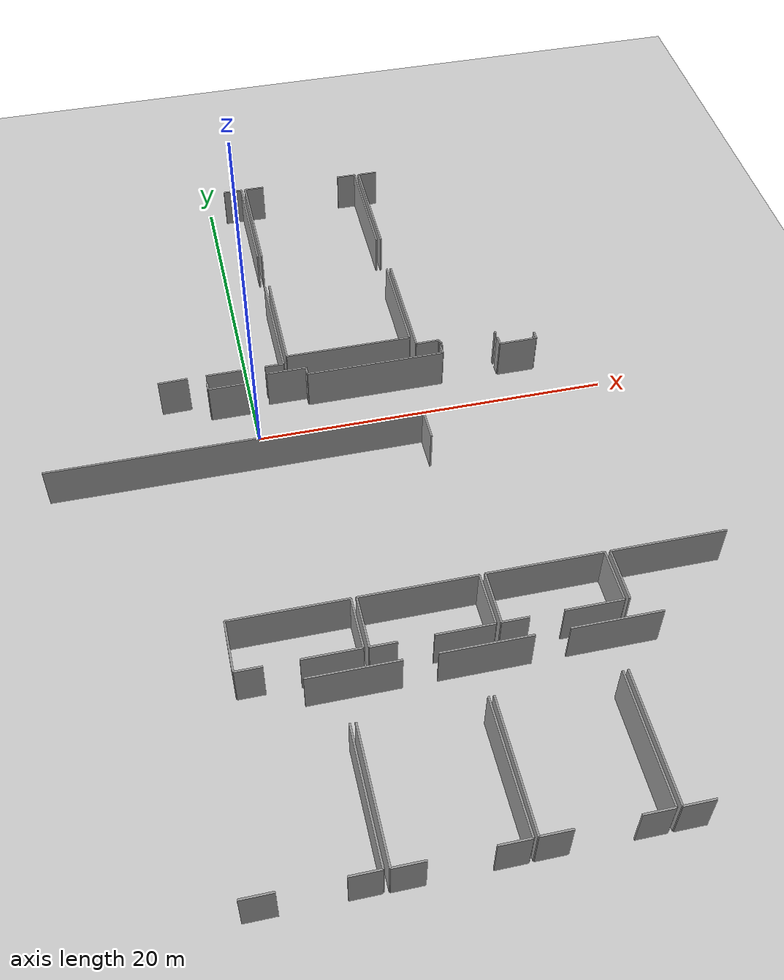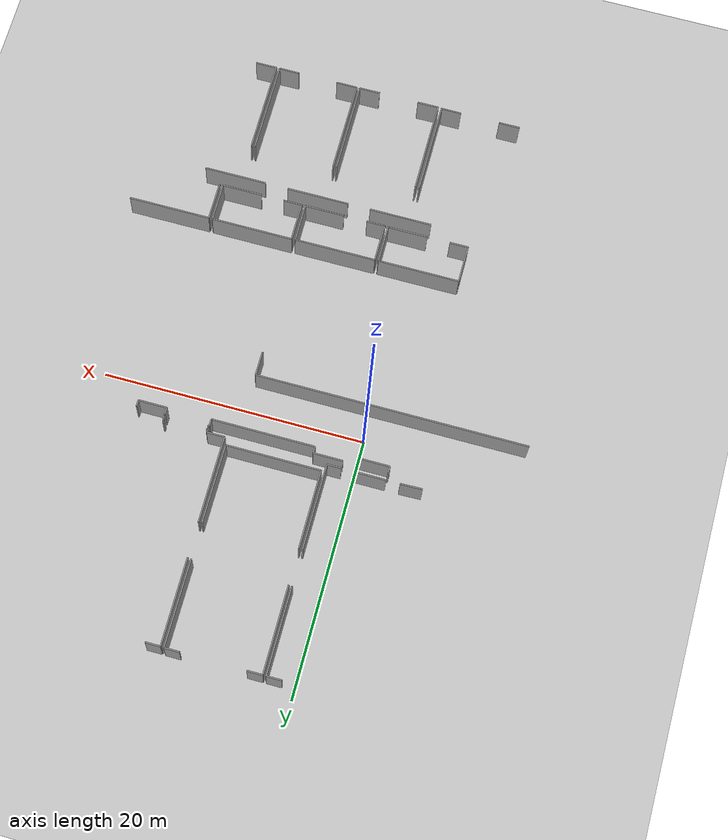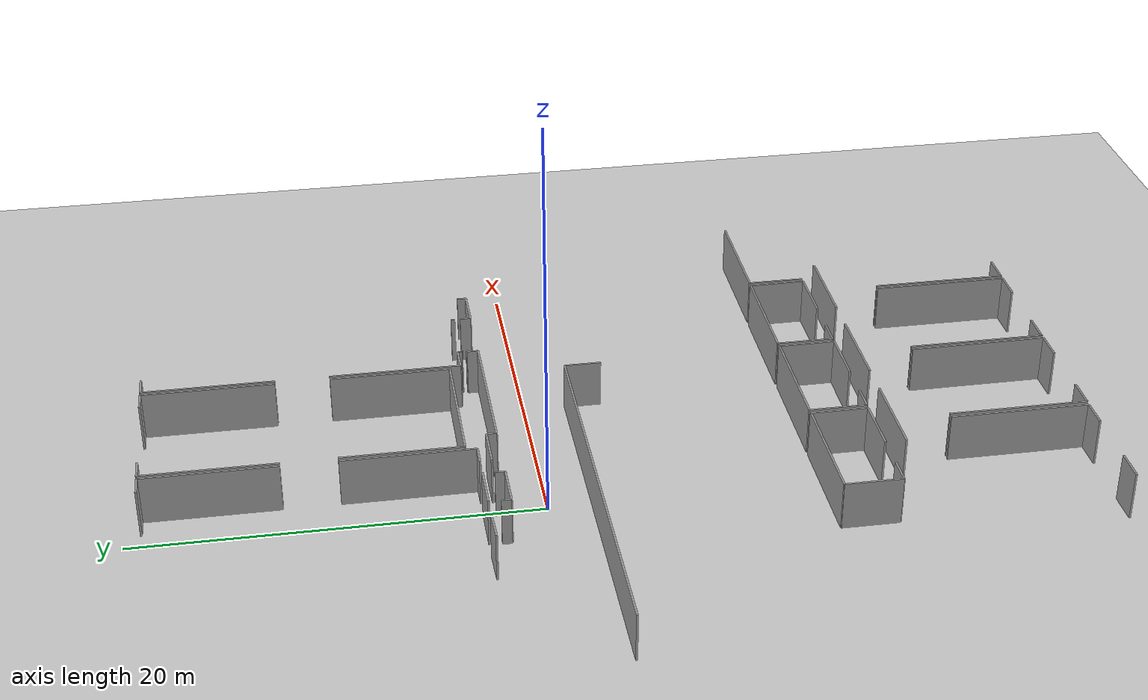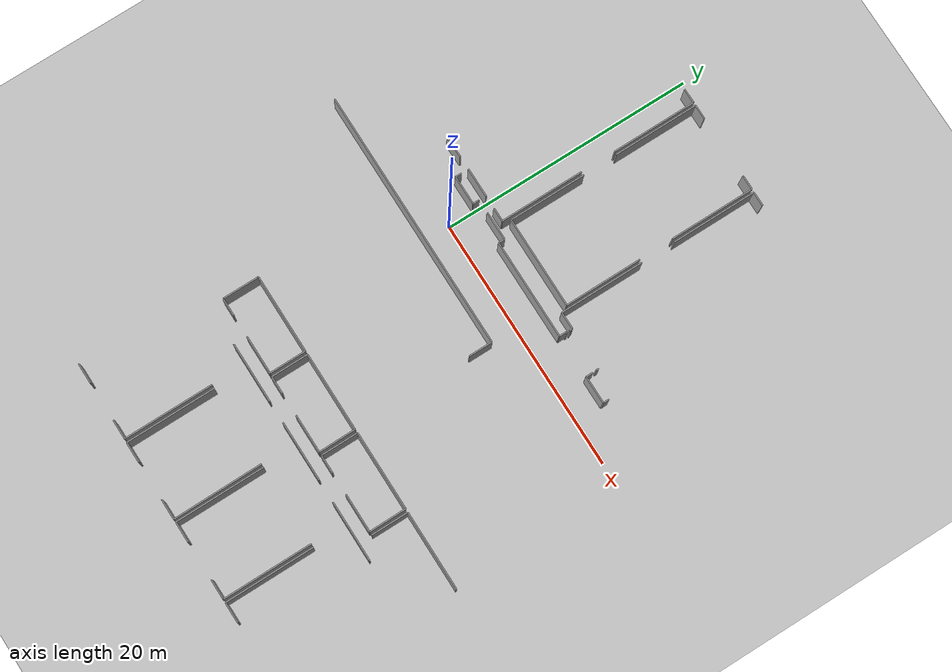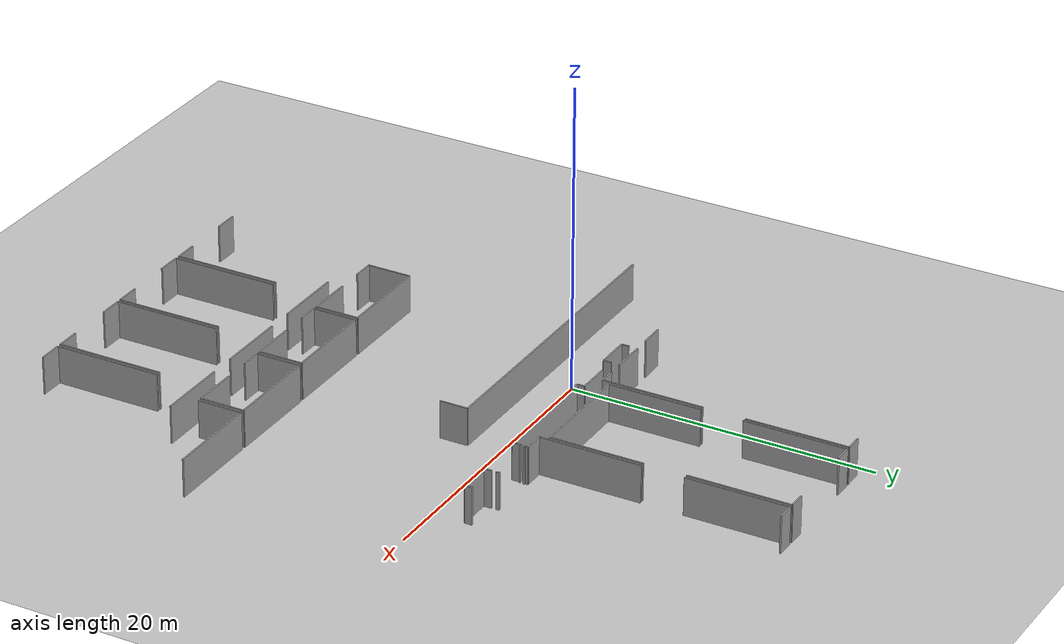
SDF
<sdf version="1.6">
 <world name="default">
  <model name="ground_plane">
   <static>1</static>
   <link name="link">
    <collision name="collision">
     <geometry><plane><normal>0 0 1</normal><size>100 100</size></plane></geometry>
     <surface><friction><ode><mu>100</mu><mu2>50</mu2></ode></friction></surface>
    </collision>
    <visual name="visual">
     <cast_shadows>0</cast_shadows>
     <geometry><plane><normal>0 0 1</normal><size>100 100</size></plane></geometry>
     <material>
      <script><uri>file://media/materials/scripts/gazebo.material</uri><name>Gazebo/Grey</name></script>
     </material>
    </visual>
   </link>
  </model>
  <model name="50045232">
   <static>1</static>
   <link name="Wall_24">
    <collision name="Wall_24_Collision">
     <geometry><box><size>1.14405461184 0.1 2.5</size></box></geometry>
     <pose>0.572027305922 0 1.25 0 0 0</pose>
    </collision>
    <visual name="Wall_24_Visual">
     <pose>0.572027305922 0 1.25 0 0 0</pose>
     <geometry><box><size>1.14405461184 0.1 2.5</size></box></geometry>
     <material>
      <script><uri>file://media/materials/scripts/gazebo.material</uri><name>Gazebo/Grey</name></script>
      <ambient>1 1 1 1</ambient>
     </material>
    </visual>
    <pose>47.6481981267 -0.0293379901572 0 0 0 0.0</pose>
   </link>
   <link name="Wall_25">
    <collision name="Wall_25_Collision">
     <geometry><box><size>6.67039216926 0.1 2.5</size></box></geometry>
     <pose>3.33519608463 0 1.25 0 0 0</pose>
    </collision>
    <visual name="Wall_25_Visual">
     <pose>3.33519608463 0 1.25 0 0 0</pose>
     <geometry><box><size>6.67039216926 0.1 2.5</size></box></geometry>
     <material>
      <script><uri>file://media/materials/scripts/gazebo.material</uri><name>Gazebo/Grey</name></script>
      <ambient>1 1 1 1</ambient>
     </material>
    </visual>
    <pose>48.7922527385 -0.0293379901572 0 0 0 -1.57068208678</pose>
   </link>
   <link name="Wall_26">
    <collision name="Wall_26_Collision">
     <geometry><box><size>6.6819495158 0.1 2.5</size></box></geometry>
     <pose>3.3409747579 0 1.25 0 0 0</pose>
    </collision>
    <visual name="Wall_26_Visual">
     <pose>3.3409747579 0 1.25 0 0 0</pose>
     <geometry><box><size>6.6819495158 0.1 2.5</size></box></geometry>
     <material>
      <script><uri>file://media/materials/scripts/gazebo.material</uri><name>Gazebo/Grey</name></script>
      <ambient>1 1 1 1</ambient>
     </material>
    </visual>
    <pose>49.0359739641 -6.71077948881 0 0 0 1.57079632679</pose>
   </link>
   <link name="Wall_27">
    <collision name="Wall_27_Collision">
     <geometry><box><size>1.15586601048 0.1 2.5</size></box></geometry>
     <pose>0.577933005239 0 1.25 0 0 0</pose>
    </collision>
    <visual name="Wall_27_Visual">
     <pose>0.577933005239 0 1.25 0 0 0</pose>
     <geometry><box><size>1.15586601048 0.1 2.5</size></box></geometry>
     <material>
      <script><uri>file://media/materials/scripts/gazebo.material</uri><name>Gazebo/Grey</name></script>
      <ambient>1 1 1 1</ambient>
     </material>
    </visual>
    <pose>49.0359739641 -0.0288299730116 0 0 0 0.0</pose>
   </link>
   <link name="Wall_28">
    <collision name="Wall_28_Collision">
     <geometry><box><size>1.15243689475 0.1 2.5</size></box></geometry>
     <pose>0.576218447373 0 1.25 0 0 0</pose>
    </collision>
    <visual name="Wall_28_Visual">
     <pose>0.576218447373 0 1.25 0 0 0</pose>
     <geometry><box><size>1.15243689475 0.1 2.5</size></box></geometry>
     <material>
      <script><uri>file://media/materials/scripts/gazebo.material</uri><name>Gazebo/Grey</name></script>
      <ambient>1 1 1 1</ambient>
     </material>
    </visual>
    <pose>55.0895062708 -0.0288299730116 0 0 0 0.0</pose>
   </link>
   <link name="Wall_29">
    <collision name="Wall_29_Collision">
     <geometry><box><size>6.68195164493 0.1 2.5</size></box></geometry>
     <pose>3.34097582246 0 1.25 0 0 0</pose>
    </collision>
    <visual name="Wall_29_Visual">
     <pose>3.34097582246 0 1.25 0 0 0</pose>
     <geometry><box><size>6.68195164493 0.1 2.5</size></box></geometry>
     <material>
      <script><uri>file://media/materials/scripts/gazebo.material</uri><name>Gazebo/Grey</name></script>
      <ambient>1 1 1 1</ambient>
     </material>
    </visual>
    <pose>56.2419431656 -0.0288299730116 0 0 0 -1.57159462359</pose>
   </link>
   <link name="Wall_58">
    <collision name="Wall_58_Collision">
     <geometry><box><size>1.13287823464 0.1 2.5</size></box></geometry>
     <pose>0.56643911732 0 1.25 0 0 0</pose>
    </collision>
    <visual name="Wall_58_Visual">
     <pose>0.56643911732 0 1.25 0 0 0</pose>
     <geometry><box><size>1.13287823464 0.1 2.5</size></box></geometry>
     <material>
      <script><uri>file://media/materials/scripts/gazebo.material</uri><name>Gazebo/Grey</name></script>
      <ambient>1 1 1 1</ambient>
     </material>
    </visual>
    <pose>57.630608033 -0.0504207016987 0 0 0 3.14159265359</pose>
   </link>
   <link name="Wall_59">
    <collision name="Wall_59_Collision">
     <geometry><box><size>6.67814183275 0.1 2.5</size></box></geometry>
     <pose>3.33907091638 0 1.25 0 0 0</pose>
    </collision>
    <visual name="Wall_59_Visual">
     <pose>3.33907091638 0 1.25 0 0 0</pose>
     <geometry><box><size>6.67814183275 0.1 2.5</size></box></geometry>
     <material>
      <script><uri>file://media/materials/scripts/gazebo.material</uri><name>Gazebo/Grey</name></script>
      <ambient>1 1 1 1</ambient>
     </material>
    </visual>
    <pose>56.4977297984 -0.0504207016987 0 0 0 -1.56994052083</pose>
   </link>
   <link name="Wall_87">
    <collision name="Wall_87_Collision">
     <geometry><box><size>6.67204318146 0.1 2.5</size></box></geometry>
     <pose>3.33602159073 0 1.25 0 0 0</pose>
    </collision>
    <visual name="Wall_87_Visual">
     <pose>3.33602159073 0 1.25 0 0 0</pose>
     <geometry><box><size>6.67204318146 0.1 2.5</size></box></geometry>
     <material>
      <script><uri>file://media/materials/scripts/gazebo.material</uri><name>Gazebo/Grey</name></script>
      <ambient>1 1 1 1</ambient>
     </material>
    </visual>
    <pose>56.5108112399 -16.1336085093 0 0 0 1.57079632679</pose>
   </link>
   <link name="Wall_90">
    <collision name="Wall_90_Collision">
     <geometry><box><size>0.219717415463 0.1 2.5</size></box></geometry>
     <pose>0.109858707731 0 1.25 0 0 0</pose>
    </collision>
    <visual name="Wall_90_Visual">
     <pose>0.109858707731 0 1.25 0 0 0</pose>
     <geometry><box><size>0.219717415463 0.1 2.5</size></box></geometry>
     <material>
      <script><uri>file://media/materials/scripts/gazebo.material</uri><name>Gazebo/Grey</name></script>
      <ambient>1 1 1 1</ambient>
     </material>
    </visual>
    <pose>61.1993014764 -16.115319892 0 0 0 -1.57079632679</pose>
   </link>
   <link name="Wall_91">
    <collision name="Wall_91_Collision">
     <geometry><box><size>0.124083187808 0.1 2.5</size></box></geometry>
     <pose>0.0620415939038 0 1.25 0 0 0</pose>
    </collision>
    <visual name="Wall_91_Visual">
     <pose>0.0620415939038 0 1.25 0 0 0</pose>
     <geometry><box><size>0.124083187808 0.1 2.5</size></box></geometry>
     <material>
      <script><uri>file://media/materials/scripts/gazebo.material</uri><name>Gazebo/Grey</name></script>
      <ambient>1 1 1 1</ambient>
     </material>
    </visual>
    <pose>57.9812668678 -16.3350373075 0 0 0 3.14159265359</pose>
   </link>
   <link name="Wall_92">
    <collision name="Wall_92_Collision">
     <geometry><box><size>0.21489125258 0.1 2.5</size></box></geometry>
     <pose>0.10744562629 0 1.25 0 0 0</pose>
    </collision>
    <visual name="Wall_92_Visual">
     <pose>0.10744562629 0 1.25 0 0 0</pose>
     <geometry><box><size>0.21489125258 0.1 2.5</size></box></geometry>
     <material>
      <script><uri>file://media/materials/scripts/gazebo.material</uri><name>Gazebo/Grey</name></script>
      <ambient>1 1 1 1</ambient>
     </material>
    </visual>
    <pose>57.8571836799 -16.3350373075 0 0 0 1.57079632679</pose>
   </link>
   <link name="Wall_93">
    <collision name="Wall_93_Collision">
     <geometry><box><size>1.34643974431 0.1 2.5</size></box></geometry>
     <pose>0.673219872155 0 1.25 0 0 0</pose>
    </collision>
    <visual name="Wall_93_Visual">
     <pose>0.673219872155 0 1.25 0 0 0</pose>
     <geometry><box><size>1.34643974431 0.1 2.5</size></box></geometry>
     <material>
      <script><uri>file://media/materials/scripts/gazebo.material</uri><name>Gazebo/Grey</name></script>
      <ambient>1 1 1 1</ambient>
     </material>
    </visual>
    <pose>57.8571836799 -16.1201460549 0 0 0 -3.13159393012</pose>
   </link>
   <link name="Wall_94">
    <collision name="Wall_94_Collision">
     <geometry><box><size>6.08769645976 0.1 2.5</size></box></geometry>
     <pose>3.04384822988 0 1.25 0 0 0</pose>
    </collision>
    <visual name="Wall_94_Visual">
     <pose>3.04384822988 0 1.25 0 0 0</pose>
     <geometry><box><size>6.08769645976 0.1 2.5</size></box></geometry>
     <material>
      <script><uri>file://media/materials/scripts/gazebo.material</uri><name>Gazebo/Grey</name></script>
      <ambient>1 1 1 1</ambient>
     </material>
    </visual>
    <pose>56.2570566757 -15.5547229719 0 0 0 1.57079632679</pose>
   </link>
   <link name="Wall_95">
    <collision name="Wall_95_Collision">
     <geometry><box><size>6.07575805683 0.1 2.5</size></box></geometry>
     <pose>3.03787902842 0 1.25 0 0 0</pose>
    </collision>
    <visual name="Wall_95_Visual">
     <pose>3.03787902842 0 1.25 0 0 0</pose>
     <geometry><box><size>6.07575805683 0.1 2.5</size></box></geometry>
     <material>
      <script><uri>file://media/materials/scripts/gazebo.material</uri><name>Gazebo/Grey</name></script>
      <ambient>1 1 1 1</ambient>
     </material>
    </visual>
    <pose>49.0578187014 -9.46702651214 0 0 0 -1.57079632679</pose>
   </link>
   <link name="Wall_96">
    <collision name="Wall_96_Collision">
     <geometry><box><size>7.19924787292 0.1 2.5</size></box></geometry>
     <pose>3.59962393646 0 1.25 0 0 0</pose>
    </collision>
    <visual name="Wall_96_Visual">
     <pose>3.59962393646 0 1.25 0 0 0</pose>
     <geometry><box><size>7.19924787292 0.1 2.5</size></box></geometry>
     <material>
      <script><uri>file://media/materials/scripts/gazebo.material</uri><name>Gazebo/Grey</name></script>
      <ambient>1 1 1 1</ambient>
     </material>
    </visual>
    <pose>49.0578187014 -15.542784569 0 0 0 -0.00165828550474</pose>
   </link>
   <link name="Wall_98">
    <collision name="Wall_98_Collision">
     <geometry><box><size>6.63826004128 0.1 2.5</size></box></geometry>
     <pose>3.31913002064 0 1.25 0 0 0</pose>
    </collision>
    <visual name="Wall_98_Visual">
     <pose>3.31913002064 0 1.25 0 0 0</pose>
     <geometry><box><size>6.63826004128 0.1 2.5</size></box></geometry>
     <material>
      <script><uri>file://media/materials/scripts/gazebo.material</uri><name>Gazebo/Grey</name></script>
      <ambient>1 1 1 1</ambient>
     </material>
    </visual>
    <pose>48.7855215114 -9.46702651214 0 0 0 -1.57079632679</pose>
   </link>
   <link name="Wall_99">
    <collision name="Wall_99_Collision">
     <geometry><box><size>1.0819495158 0.1 2.5</size></box></geometry>
     <pose>0.540974757898 0 1.25 0 0 0</pose>
    </collision>
    <visual name="Wall_99_Visual">
     <pose>0.540974757898 0 1.25 0 0 0</pose>
     <geometry><box><size>1.0819495158 0.1 2.5</size></box></geometry>
     <material>
      <script><uri>file://media/materials/scripts/gazebo.material</uri><name>Gazebo/Grey</name></script>
      <ambient>1 1 1 1</ambient>
     </material>
    </visual>
    <pose>48.7855215114 -16.1052865534 0 0 0 3.14159265359</pose>
   </link>
   <link name="Wall_100">
    <collision name="Wall_100_Collision">
     <geometry><box><size>2.34449912685 0.1 2.5</size></box></geometry>
     <pose>1.17224956342 0 1.25 0 0 0</pose>
    </collision>
    <visual name="Wall_100_Visual">
     <pose>1.17224956342 0 1.25 0 0 0</pose>
     <geometry><box><size>2.34449912685 0.1 2.5</size></box></geometry>
     <material>
      <script><uri>file://media/materials/scripts/gazebo.material</uri><name>Gazebo/Grey</name></script>
      <ambient>1 1 1 1</ambient>
     </material>
    </visual>
    <pose>46.6987140816 -16.1052865534 0 0 0 3.14159265359</pose>
   </link>
   <link name="Wall_101">
    <collision name="Wall_101_Collision">
     <geometry><box><size>1.68128148169 0.1 2.5</size></box></geometry>
     <pose>0.840640740846 0 1.25 0 0 0</pose>
    </collision>
    <visual name="Wall_101_Visual">
     <pose>0.840640740846 0 1.25 0 0 0</pose>
     <geometry><box><size>1.68128148169 0.1 2.5</size></box></geometry>
     <material>
      <script><uri>file://media/materials/scripts/gazebo.material</uri><name>Gazebo/Grey</name></script>
      <ambient>1 1 1 1</ambient>
     </material>
    </visual>
    <pose>43.3164629306 -16.1052865534 0 0 0 -3.11703963194</pose>
   </link>
   <link name="Wall_220">
    <collision name="Wall_220_Collision">
     <geometry><box><size>4.78082235275 0.1 2.5</size></box></geometry>
     <pose>2.39041117638 0 1.25 0 0 0</pose>
    </collision>
    <visual name="Wall_220_Visual">
     <pose>2.39041117638 0 1.25 0 0 0</pose>
     <geometry><box><size>4.78082235275 0.1 2.5</size></box></geometry>
     <material>
      <script><uri>file://media/materials/scripts/gazebo.material</uri><name>Gazebo/Grey</name></script>
      <ambient>1 1 1 1</ambient>
     </material>
    </visual>
    <pose>46.187140816 -36.6207969519 0 0 0 0.0</pose>
   </link>
   <link name="Wall_221">
    <collision name="Wall_221_Collision">
     <geometry><box><size>4.7598666455 0.1 2.5</size></box></geometry>
     <pose>2.37993332275 0 1.25 0 0 0</pose>
    </collision>
    <visual name="Wall_221_Visual">
     <pose>2.37993332275 0 1.25 0 0 0</pose>
     <geometry><box><size>4.7598666455 0.1 2.5</size></box></geometry>
     <material>
      <script><uri>file://media/materials/scripts/gazebo.material</uri><name>Gazebo/Grey</name></script>
      <ambient>1 1 1 1</ambient>
     </material>
    </visual>
    <pose>52.7025877123 -36.6207969519 0 0 0 0.0</pose>
   </link>
   <link name="Wall_222">
    <collision name="Wall_222_Collision">
     <geometry><box><size>4.75999364979 0.1 2.5</size></box></geometry>
     <pose>2.37999682489 0 1.25 0 0 0</pose>
    </collision>
    <visual name="Wall_222_Visual">
     <pose>2.37999682489 0 1.25 0 0 0</pose>
     <geometry><box><size>4.75999364979 0.1 2.5</size></box></geometry>
     <material>
      <script><uri>file://media/materials/scripts/gazebo.material</uri><name>Gazebo/Grey</name></script>
      <ambient>1 1 1 1</ambient>
     </material>
    </visual>
    <pose>59.230608033 -36.6207969519 0 0 0 0.0</pose>
   </link>
   <link name="Wall_238">
    <collision name="Wall_238_Collision">
     <geometry><box><size>7.06804254644 0.1 2.5</size></box></geometry>
     <pose>3.53402127322 0 1.25 0 0 0</pose>
    </collision>
    <visual name="Wall_238_Visual">
     <pose>3.53402127322 0 1.25 0 0 0</pose>
     <geometry><box><size>7.06804254644 0.1 2.5</size></box></geometry>
     <material>
      <script><uri>file://media/materials/scripts/gazebo.material</uri><name>Gazebo/Grey</name></script>
      <ambient>1 1 1 1</ambient>
     </material>
    </visual>
    <pose>47.8294332434 -39.3737418638 0 0 0 -1.57079632679</pose>
   </link>
   <link name="Wall_239">
    <collision name="Wall_239_Collision">
     <geometry><box><size>1.54615018257 0.1 2.5</size></box></geometry>
     <pose>0.773075091284 0 1.25 0 0 0</pose>
    </collision>
    <visual name="Wall_239_Visual">
     <pose>0.773075091284 0 1.25 0 0 0</pose>
     <geometry><box><size>1.54615018257 0.1 2.5</size></box></geometry>
     <material>
      <script><uri>file://media/materials/scripts/gazebo.material</uri><name>Gazebo/Grey</name></script>
      <ambient>1 1 1 1</ambient>
     </material>
    </visual>
    <pose>47.8294332434 -46.4417844102 0 0 0 3.14159265359</pose>
   </link>
   <link name="Wall_240">
    <collision name="Wall_240_Collision">
     <geometry><box><size>1.61816161295 0.1 2.5</size></box></geometry>
     <pose>0.809080806477 0 1.25 0 0 0</pose>
    </collision>
    <visual name="Wall_240_Visual">
     <pose>0.809080806477 0 1.25 0 0 0</pose>
     <geometry><box><size>1.61816161295 0.1 2.5</size></box></geometry>
     <material>
      <script><uri>file://media/materials/scripts/gazebo.material</uri><name>Gazebo/Grey</name></script>
      <ambient>1 1 1 1</ambient>
     </material>
    </visual>
    <pose>43.234164153 -46.4417844102 0 0 0 3.14159265359</pose>
   </link>
   <link name="Wall_241">
    <collision name="Wall_241_Collision">
     <geometry><box><size>1.61054135577 0.1 2.5</size></box></geometry>
     <pose>0.805270677885 0 1.25 0 0 0</pose>
    </collision>
    <visual name="Wall_241_Visual">
     <pose>0.805270677885 0 1.25 0 0 0</pose>
     <geometry><box><size>1.61054135577 0.1 2.5</size></box></geometry>
     <material>
      <script><uri>file://media/materials/scripts/gazebo.material</uri><name>Gazebo/Grey</name></script>
      <ambient>1 1 1 1</ambient>
     </material>
    </visual>
    <pose>54.4027940943 -46.4675662804 0 0 0 3.14159265359</pose>
   </link>
   <link name="Wall_242">
    <collision name="Wall_242_Collision">
     <geometry><box><size>1.61168439435 0.1 2.5</size></box></geometry>
     <pose>0.805842197174 0 1.25 0 0 0</pose>
    </collision>
    <visual name="Wall_242_Visual">
     <pose>0.805842197174 0 1.25 0 0 0</pose>
     <geometry><box><size>1.61168439435 0.1 2.5</size></box></geometry>
     <material>
      <script><uri>file://media/materials/scripts/gazebo.material</uri><name>Gazebo/Grey</name></script>
      <ambient>1 1 1 1</ambient>
     </material>
    </visual>
    <pose>49.7358945864 -46.4675662804 0 0 0 3.14159265359</pose>
   </link>
   <link name="Wall_243">
    <collision name="Wall_243_Collision">
     <geometry><box><size>7.08023495793 0.1 2.5</size></box></geometry>
     <pose>3.54011747896 0 1.25 0 0 0</pose>
    </collision>
    <visual name="Wall_243_Visual">
     <pose>3.54011747896 0 1.25 0 0 0</pose>
     <geometry><box><size>7.08023495793 0.1 2.5</size></box></geometry>
     <material>
      <script><uri>file://media/materials/scripts/gazebo.material</uri><name>Gazebo/Grey</name></script>
      <ambient>1 1 1 1</ambient>
     </material>
    </visual>
    <pose>48.1242101921 -46.4675662804 0 0 0 1.57079632679</pose>
   </link>
   <link name="Wall_244">
    <collision name="Wall_244_Collision">
     <geometry><box><size>7.08034726703 0.1 2.5</size></box></geometry>
     <pose>3.54017363351 0 1.25 0 0 0</pose>
    </collision>
    <visual name="Wall_244_Visual">
     <pose>3.54017363351 0 1.25 0 0 0</pose>
     <geometry><box><size>7.08034726703 0.1 2.5</size></box></geometry>
     <material>
      <script><uri>file://media/materials/scripts/gazebo.material</uri><name>Gazebo/Grey</name></script>
      <ambient>1 1 1 1</ambient>
     </material>
    </visual>
    <pose>54.3629147484 -39.3873313224 0 0 0 -1.5651638973</pose>
   </link>
   <link name="Wall_245">
    <collision name="Wall_245_Collision">
     <geometry><box><size>1.57485315129 0.1 2.5</size></box></geometry>
     <pose>0.787426575647 0 1.25 0 0 0</pose>
    </collision>
    <visual name="Wall_245_Visual">
     <pose>0.787426575647 0 1.25 0 0 0</pose>
     <geometry><box><size>1.57485315129 0.1 2.5</size></box></geometry>
     <material>
      <script><uri>file://media/materials/scripts/gazebo.material</uri><name>Gazebo/Grey</name></script>
      <ambient>1 1 1 1</ambient>
     </material>
    </visual>
    <pose>60.8800127004 -46.4548658517 0 0 0 3.14159265359</pose>
   </link>
   <link name="Wall_246">
    <collision name="Wall_246_Collision">
     <geometry><box><size>1.61168439435 0.1 2.5</size></box></geometry>
     <pose>0.805842197174 0 1.25 0 0 0</pose>
    </collision>
    <visual name="Wall_246_Visual">
     <pose>0.805842197174 0 1.25 0 0 0</pose>
     <geometry><box><size>1.61168439435 0.1 2.5</size></box></geometry>
     <material>
      <script><uri>file://media/materials/scripts/gazebo.material</uri><name>Gazebo/Grey</name></script>
      <ambient>1 1 1 1</ambient>
     </material>
    </visual>
    <pose>56.2494364185 -46.4548658517 0 0 0 3.14159265359</pose>
   </link>
   <link name="Wall_247">
    <collision name="Wall_247_Collision">
     <geometry><box><size>7.06753452929 0.1 2.5</size></box></geometry>
     <pose>3.53376726465 0 1.25 0 0 0</pose>
    </collision>
    <visual name="Wall_247_Visual">
     <pose>3.53376726465 0 1.25 0 0 0</pose>
     <geometry><box><size>7.06753452929 0.1 2.5</size></box></geometry>
     <material>
      <script><uri>file://media/materials/scripts/gazebo.material</uri><name>Gazebo/Grey</name></script>
      <ambient>1 1 1 1</ambient>
     </material>
    </visual>
    <pose>54.6377520241 -46.4548658517 0 0 0 1.57079632679</pose>
   </link>
   <link name="Wall_248">
    <collision name="Wall_248_Collision">
     <geometry><box><size>7.06753542394 0.1 2.5</size></box></geometry>
     <pose>3.53376771197 0 1.25 0 0 0</pose>
    </collision>
    <visual name="Wall_248_Visual">
     <pose>3.53376771197 0 1.25 0 0 0</pose>
     <geometry><box><size>7.06753542394 0.1 2.5</size></box></geometry>
     <material>
      <script><uri>file://media/materials/scripts/gazebo.material</uri><name>Gazebo/Grey</name></script>
      <ambient>1 1 1 1</ambient>
     </material>
    </visual>
    <pose>60.8764565804 -39.3873313224 0 0 0 -1.5702931641</pose>
   </link>
   <link name="Wall_250">
    <collision name="Wall_250_Collision">
     <geometry><box><size>1.61168439435 0.1 2.5</size></box></geometry>
     <pose>0.805842197174 0 1.25 0 0 0</pose>
    </collision>
    <visual name="Wall_250_Visual">
     <pose>0.805842197174 0 1.25 0 0 0</pose>
     <geometry><box><size>1.61168439435 0.1 2.5</size></box></geometry>
     <material>
      <script><uri>file://media/materials/scripts/gazebo.material</uri><name>Gazebo/Grey</name></script>
      <ambient>1 1 1 1</ambient>
     </material>
    </visual>
    <pose>62.7629782505 -46.4548658517 0 0 0 3.14159265359</pose>
   </link>
   <link name="Wall_251">
    <collision name="Wall_251_Collision">
     <geometry><box><size>7.06016828068 0.1 2.5</size></box></geometry>
     <pose>3.53008414034 0 1.25 0 0 0</pose>
    </collision>
    <visual name="Wall_251_Visual">
     <pose>3.53008414034 0 1.25 0 0 0</pose>
     <geometry><box><size>7.06016828068 0.1 2.5</size></box></geometry>
     <material>
      <script><uri>file://media/materials/scripts/gazebo.material</uri><name>Gazebo/Grey</name></script>
      <ambient>1 1 1 1</ambient>
     </material>
    </visual>
    <pose>61.1512938562 -46.4548658517 0 0 0 1.57079632679</pose>
   </link>
   <link name="Wall_292">
    <collision name="Wall_292_Collision">
     <geometry><box><size>2.9274488014 0.1 2.5</size></box></geometry>
     <pose>1.4637244007 0 1.25 0 0 0</pose>
    </collision>
    <visual name="Wall_292_Visual">
     <pose>1.4637244007 0 1.25 0 0 0</pose>
     <geometry><box><size>2.9274488014 0.1 2.5</size></box></geometry>
     <material>
      <script><uri>file://media/materials/scripts/gazebo.material</uri><name>Gazebo/Grey</name></script>
      <ambient>1 1 1 1</ambient>
     </material>
    </visual>
    <pose>62.5793300524 -35.5750436577 0 0 0 1.57079632679</pose>
   </link>
   <link name="Wall_293">
    <collision name="Wall_293_Collision">
     <geometry><box><size>6.23794253056 0.1 2.5</size></box></geometry>
     <pose>3.11897126528 0 1.25 0 0 0</pose>
    </collision>
    <visual name="Wall_293_Visual">
     <pose>3.11897126528 0 1.25 0 0 0</pose>
     <geometry><box><size>6.23794253056 0.1 2.5</size></box></geometry>
     <material>
      <script><uri>file://media/materials/scripts/gazebo.material</uri><name>Gazebo/Grey</name></script>
      <ambient>1 1 1 1</ambient>
     </material>
    </visual>
    <pose>62.5793300524 -32.6475948563 0 0 0 0.0</pose>
   </link>
   <link name="Wall_295">
    <collision name="Wall_295_Collision">
     <geometry><box><size>3.05381806636 0.1 2.5</size></box></geometry>
     <pose>1.52690903318 0 1.25 0 0 0</pose>
    </collision>
    <visual name="Wall_295_Visual">
     <pose>1.52690903318 0 1.25 0 0 0</pose>
     <geometry><box><size>3.05381806636 0.1 2.5</size></box></geometry>
     <material>
      <script><uri>file://media/materials/scripts/gazebo.material</uri><name>Gazebo/Grey</name></script>
      <ambient>1 1 1 1</ambient>
     </material>
    </visual>
    <pose>62.3112240038 -35.5803778378 0 0 0 3.14159265359</pose>
   </link>
   <link name="Wall_296">
    <collision name="Wall_296_Collision">
     <geometry><box><size>1.43044927766 0.1 2.5</size></box></geometry>
     <pose>0.715224638832 0 1.25 0 0 0</pose>
    </collision>
    <visual name="Wall_296_Visual">
     <pose>0.715224638832 0 1.25 0 0 0</pose>
     <geometry><box><size>1.43044927766 0.1 2.5</size></box></geometry>
     <material>
      <script><uri>file://media/materials/scripts/gazebo.material</uri><name>Gazebo/Grey</name></script>
      <ambient>1 1 1 1</ambient>
     </material>
    </visual>
    <pose>57.499793618 -35.5803778378 0 0 0 3.14159265359</pose>
   </link>
   <link name="Wall_297">
    <collision name="Wall_297_Collision">
     <geometry><box><size>2.93887918717 0.1 2.5</size></box></geometry>
     <pose>1.46943959359 0 1.25 0 0 0</pose>
    </collision>
    <visual name="Wall_297_Visual">
     <pose>1.46943959359 0 1.25 0 0 0</pose>
     <geometry><box><size>2.93887918717 0.1 2.5</size></box></geometry>
     <material>
      <script><uri>file://media/materials/scripts/gazebo.material</uri><name>Gazebo/Grey</name></script>
      <ambient>1 1 1 1</ambient>
     </material>
    </visual>
    <pose>56.0693443404 -35.5803778378 0 0 0 1.57079632679</pose>
   </link>
   <link name="Wall_298">
    <collision name="Wall_298_Collision">
     <geometry><box><size>6.22308302905 0.1 2.5</size></box></geometry>
     <pose>3.11154151453 0 1.25 0 0 0</pose>
    </collision>
    <visual name="Wall_298_Visual">
     <pose>3.11154151453 0 1.25 0 0 0</pose>
     <geometry><box><size>6.22308302905 0.1 2.5</size></box></geometry>
     <material>
      <script><uri>file://media/materials/scripts/gazebo.material</uri><name>Gazebo/Grey</name></script>
      <ambient>1 1 1 1</ambient>
     </material>
    </visual>
    <pose>56.0693443404 -32.6414986506 0 0 0 0.0</pose>
   </link>
   <link name="Wall_299">
    <collision name="Wall_299_Collision">
     <geometry><box><size>2.9389392968 0.1 2.5</size></box></geometry>
     <pose>1.4694696484 0 1.25 0 0 0</pose>
    </collision>
    <visual name="Wall_299_Visual">
     <pose>1.4694696484 0 1.25 0 0 0</pose>
     <geometry><box><size>2.9389392968 0.1 2.5</size></box></geometry>
     <material>
      <script><uri>file://media/materials/scripts/gazebo.material</uri><name>Gazebo/Grey</name></script>
      <ambient>1 1 1 1</ambient>
     </material>
    </visual>
    <pose>62.2924273694 -32.6414986506 0 0 0 -1.56440056266</pose>
   </link>
   <link name="Wall_300">
    <collision name="Wall_300_Collision">
     <geometry><box><size>3.04403873631 0.1 2.5</size></box></geometry>
     <pose>1.52201936815 0 1.25 0 0 0</pose>
    </collision>
    <visual name="Wall_300_Visual">
     <pose>1.52201936815 0 1.25 0 0 0</pose>
     <geometry><box><size>3.04403873631 0.1 2.5</size></box></geometry>
     <material>
      <script><uri>file://media/materials/scripts/gazebo.material</uri><name>Gazebo/Grey</name></script>
      <ambient>1 1 1 1</ambient>
     </material>
    </visual>
    <pose>55.7948880775 -35.5905381807 0 0 0 3.14159265359</pose>
   </link>
   <link name="Wall_301">
    <collision name="Wall_301_Collision">
     <geometry><box><size>1.39412605175 0.1 2.5</size></box></geometry>
     <pose>0.697063025877 0 1.25 0 0 0</pose>
    </collision>
    <visual name="Wall_301_Visual">
     <pose>0.697063025877 0 1.25 0 0 0</pose>
     <geometry><box><size>1.39412605175 0.1 2.5</size></box></geometry>
     <material>
      <script><uri>file://media/materials/scripts/gazebo.material</uri><name>Gazebo/Grey</name></script>
      <ambient>1 1 1 1</ambient>
     </material>
    </visual>
    <pose>50.9525956501 -35.5905381807 0 0 0 3.14159265359</pose>
   </link>
   <link name="Wall_302">
    <collision name="Wall_302_Collision">
     <geometry><box><size>2.92516272424 0.1 2.5</size></box></geometry>
     <pose>1.46258136212 0 1.25 0 0 0</pose>
    </collision>
    <visual name="Wall_302_Visual">
     <pose>1.46258136212 0 1.25 0 0 0</pose>
     <geometry><box><size>2.92516272424 0.1 2.5</size></box></geometry>
     <material>
      <script><uri>file://media/materials/scripts/gazebo.material</uri><name>Gazebo/Grey</name></script>
      <ambient>1 1 1 1</ambient>
     </material>
    </visual>
    <pose>49.5584695983 -35.5905381807 0 0 0 1.57079632679</pose>
   </link>
   <link name="Wall_303">
    <collision name="Wall_303_Collision">
     <geometry><box><size>6.21101762184 0.1 2.5</size></box></geometry>
     <pose>3.10550881092 0 1.25 0 0 0</pose>
    </collision>
    <visual name="Wall_303_Visual">
     <pose>3.10550881092 0 1.25 0 0 0</pose>
     <geometry><box><size>6.21101762184 0.1 2.5</size></box></geometry>
     <material>
      <script><uri>file://media/materials/scripts/gazebo.material</uri><name>Gazebo/Grey</name></script>
      <ambient>1 1 1 1</ambient>
     </material>
    </visual>
    <pose>49.5584695983 -32.6653754564 0 0 0 0.0</pose>
   </link>
   <link name="Wall_304">
    <collision name="Wall_304_Collision">
     <geometry><box><size>2.92527300723 0.1 2.5</size></box></geometry>
     <pose>1.46263650362 0 1.25 0 0 0</pose>
    </collision>
    <visual name="Wall_304_Visual">
     <pose>1.46263650362 0 1.25 0 0 0</pose>
     <geometry><box><size>2.92527300723 0.1 2.5</size></box></geometry>
     <material>
      <script><uri>file://media/materials/scripts/gazebo.material</uri><name>Gazebo/Grey</name></script>
      <ambient>1 1 1 1</ambient>
     </material>
    </visual>
    <pose>55.7694872202 -32.6653754564 0 0 0 -1.56211297436</pose>
   </link>
   <link name="Wall_305">
    <collision name="Wall_305_Collision">
     <geometry><box><size>3.0693125893 0.1 2.5</size></box></geometry>
     <pose>1.53465629465 0 1.25 0 0 0</pose>
    </collision>
    <visual name="Wall_305_Visual">
     <pose>1.53465629465 0 1.25 0 0 0</pose>
     <geometry><box><size>3.0693125893 0.1 2.5</size></box></geometry>
     <material>
      <script><uri>file://media/materials/scripts/gazebo.material</uri><name>Gazebo/Grey</name></script>
      <ambient>1 1 1 1</ambient>
     </material>
    </visual>
    <pose>49.2849023655 -35.564502302 0 0 0 3.14159265359</pose>
   </link>
   <link name="Wall_306">
    <collision name="Wall_306_Collision">
     <geometry><box><size>1.41165264328 0.1 2.5</size></box></geometry>
     <pose>0.705826321638 0 1.25 0 0 0</pose>
    </collision>
    <visual name="Wall_306_Visual">
     <pose>0.705826321638 0 1.25 0 0 0</pose>
     <geometry><box><size>1.41165264328 0.1 2.5</size></box></geometry>
     <material>
      <script><uri>file://media/materials/scripts/gazebo.material</uri><name>Gazebo/Grey</name></script>
      <ambient>1 1 1 1</ambient>
     </material>
    </visual>
    <pose>44.4586124782 -35.564502302 0 0 0 3.14159265359</pose>
   </link>
   <link name="Wall_307">
    <collision name="Wall_307_Collision">
     <geometry><box><size>2.89391966979 0.1 2.5</size></box></geometry>
     <pose>1.44695983489 0 1.25 0 0 0</pose>
    </collision>
    <visual name="Wall_307_Visual">
     <pose>1.44695983489 0 1.25 0 0 0</pose>
     <geometry><box><size>2.89391966979 0.1 2.5</size></box></geometry>
     <material>
      <script><uri>file://media/materials/scripts/gazebo.material</uri><name>Gazebo/Grey</name></script>
      <ambient>1 1 1 1</ambient>
     </material>
    </visual>
    <pose>43.0469598349 -35.564502302 0 0 0 1.57079632679</pose>
   </link>
   <link name="Wall_308">
    <collision name="Wall_308_Collision">
     <geometry><box><size>6.22562311478 0.1 2.5</size></box></geometry>
     <pose>3.11281155739 0 1.25 0 0 0</pose>
    </collision>
    <visual name="Wall_308_Visual">
     <pose>3.11281155739 0 1.25 0 0 0</pose>
     <geometry><box><size>6.22562311478 0.1 2.5</size></box></geometry>
     <material>
      <script><uri>file://media/materials/scripts/gazebo.material</uri><name>Gazebo/Grey</name></script>
      <ambient>1 1 1 1</ambient>
     </material>
    </visual>
    <pose>43.0469598349 -32.6705826322 0 0 0 0.0</pose>
   </link>
   <link name="Wall_309">
    <collision name="Wall_309_Collision">
     <geometry><box><size>2.89394589155 0.1 2.5</size></box></geometry>
     <pose>1.44697294577 0 1.25 0 0 0</pose>
    </collision>
    <visual name="Wall_309_Visual">
     <pose>1.44697294577 0 1.25 0 0 0</pose>
     <geometry><box><size>2.89394589155 0.1 2.5</size></box></geometry>
     <material>
      <script><uri>file://media/materials/scripts/gazebo.material</uri><name>Gazebo/Grey</name></script>
      <ambient>1 1 1 1</ambient>
     </material>
    </visual>
    <pose>49.2725829497 -32.6705826322 0 0 0 -1.5665393526</pose>
   </link>
   <link name="Wall_359">
    <collision name="Wall_359_Collision">
     <geometry><box><size>0.482235275441 0.1 2.5</size></box></geometry>
     <pose>0.24111763772 0 1.25 0 0 0</pose>
    </collision>
    <visual name="Wall_359_Visual">
     <pose>0.24111763772 0 1.25 0 0 0</pose>
     <geometry><box><size>0.482235275441 0.1 2.5</size></box></geometry>
     <material>
      <script><uri>file://media/materials/scripts/gazebo.material</uri><name>Gazebo/Grey</name></script>
      <ambient>1 1 1 1</ambient>
     </material>
    </visual>
    <pose>44.3451976504 -16.6930623909 0 0 0 -1.57079632679</pose>
   </link>
   <link name="Wall_360">
    <collision name="Wall_360_Collision">
     <geometry><box><size>2.29649150659 0.1 2.5</size></box></geometry>
     <pose>1.14824575329 0 1.25 0 0 0</pose>
    </collision>
    <visual name="Wall_360_Visual">
     <pose>1.14824575329 0 1.25 0 0 0</pose>
     <geometry><box><size>2.29649150659 0.1 2.5</size></box></geometry>
     <material>
      <script><uri>file://media/materials/scripts/gazebo.material</uri><name>Gazebo/Grey</name></script>
      <ambient>1 1 1 1</ambient>
     </material>
    </visual>
    <pose>44.3451976504 -17.1752976663 0 0 0 0.0</pose>
   </link>
   <link name="Wall_361">
    <collision name="Wall_361_Collision">
     <geometry><box><size>0.5012859184 0.1 2.5</size></box></geometry>
     <pose>0.2506429592 0 1.25 0 0 0</pose>
    </collision>
    <visual name="Wall_361_Visual">
     <pose>0.2506429592 0 1.25 0 0 0</pose>
     <geometry><box><size>0.5012859184 0.1 2.5</size></box></geometry>
     <material>
      <script><uri>file://media/materials/scripts/gazebo.material</uri><name>Gazebo/Grey</name></script>
      <ambient>1 1 1 1</ambient>
     </material>
    </visual>
    <pose>46.641689157 -17.1752976663 0 0 0 1.57079632679</pose>
   </link>
   <link name="Wall_362">
    <collision name="Wall_362_Collision">
     <geometry><box><size>2.25356405779 0.1 2.5</size></box></geometry>
     <pose>1.12678202889 0 1.25 0 0 0</pose>
    </collision>
    <visual name="Wall_362_Visual">
     <pose>1.12678202889 0 1.25 0 0 0</pose>
     <geometry><box><size>2.25356405779 0.1 2.5</size></box></geometry>
     <material>
      <script><uri>file://media/materials/scripts/gazebo.material</uri><name>Gazebo/Grey</name></script>
      <ambient>1 1 1 1</ambient>
     </material>
    </visual>
    <pose>47.7160184156 -16.6740117479 0 0 0 0.0</pose>
   </link>
   <link name="Wall_363">
    <collision name="Wall_363_Collision">
     <geometry><box><size>0.5012859184 0.1 2.5</size></box></geometry>
     <pose>0.2506429592 0 1.25 0 0 0</pose>
    </collision>
    <visual name="Wall_363_Visual">
     <pose>0.2506429592 0 1.25 0 0 0</pose>
     <geometry><box><size>0.5012859184 0.1 2.5</size></box></geometry>
     <material>
      <script><uri>file://media/materials/scripts/gazebo.material</uri><name>Gazebo/Grey</name></script>
      <ambient>1 1 1 1</ambient>
     </material>
    </visual>
    <pose>49.9695824734 -16.6740117479 0 0 0 -1.57079632679</pose>
   </link>
   <link name="Wall_364">
    <collision name="Wall_364_Collision">
     <geometry><box><size>7.85699317352 0.1 2.5</size></box></geometry>
     <pose>3.92849658676 0 1.25 0 0 0</pose>
    </collision>
    <visual name="Wall_364_Visual">
     <pose>3.92849658676 0 1.25 0 0 0</pose>
     <geometry><box><size>7.85699317352 0.1 2.5</size></box></geometry>
     <material>
      <script><uri>file://media/materials/scripts/gazebo.material</uri><name>Gazebo/Grey</name></script>
      <ambient>1 1 1 1</ambient>
     </material>
    </visual>
    <pose>49.9695824734 -17.1752976663 0 0 0 0.0</pose>
   </link>
   <link name="Wall_365">
    <collision name="Wall_365_Collision">
     <geometry><box><size>0.567328147325 0.1 2.5</size></box></geometry>
     <pose>0.283664073662 0 1.25 0 0 0</pose>
    </collision>
    <visual name="Wall_365_Visual">
     <pose>0.283664073662 0 1.25 0 0 0</pose>
     <geometry><box><size>0.567328147325 0.1 2.5</size></box></geometry>
     <material>
      <script><uri>file://media/materials/scripts/gazebo.material</uri><name>Gazebo/Grey</name></script>
      <ambient>1 1 1 1</ambient>
     </material>
    </visual>
    <pose>57.8265756469 -17.1752976663 0 0 0 1.57079632679</pose>
   </link>
   <link name="Wall_366">
    <collision name="Wall_366_Collision">
     <geometry><box><size>0.130814414987 0.1 2.5</size></box></geometry>
     <pose>0.0654072074933 0 1.25 0 0 0</pose>
    </collision>
    <visual name="Wall_366_Visual">
     <pose>0.0654072074933 0 1.25 0 0 0</pose>
     <geometry><box><size>0.130814414987 0.1 2.5</size></box></geometry>
     <material>
      <script><uri>file://media/materials/scripts/gazebo.material</uri><name>Gazebo/Grey</name></script>
      <ambient>1 1 1 1</ambient>
     </material>
    </visual>
    <pose>57.8265756469 -16.607969519 0 0 0 0.0</pose>
   </link>
   <link name="Wall_367">
    <collision name="Wall_367_Collision">
     <geometry><box><size>0.551960628671 0.1 2.5</size></box></geometry>
     <pose>0.275980314336 0 1.25 0 0 0</pose>
    </collision>
    <visual name="Wall_367_Visual">
     <pose>0.275980314336 0 1.25 0 0 0</pose>
     <geometry><box><size>0.551960628671 0.1 2.5</size></box></geometry>
     <material>
      <script><uri>file://media/materials/scripts/gazebo.material</uri><name>Gazebo/Grey</name></script>
      <ambient>1 1 1 1</ambient>
     </material>
    </visual>
    <pose>61.217717098 -16.607969519 0 0 0 -1.57079632679</pose>
   </link>
   <link name="Wall_368">
    <collision name="Wall_368_Collision">
     <geometry><box><size>2.1712652802 0.1 2.5</size></box></geometry>
     <pose>1.0856326401 0 1.25 0 0 0</pose>
    </collision>
    <visual name="Wall_368_Visual">
     <pose>1.0856326401 0 1.25 0 0 0</pose>
     <geometry><box><size>2.1712652802 0.1 2.5</size></box></geometry>
     <material>
      <script><uri>file://media/materials/scripts/gazebo.material</uri><name>Gazebo/Grey</name></script>
      <ambient>1 1 1 1</ambient>
     </material>
    </visual>
    <pose>61.217717098 -17.1599301476 0 0 0 0.0</pose>
   </link>
   <link name="Wall_369">
    <collision name="Wall_369_Collision">
     <geometry><box><size>0.479314176853 0.1 2.5</size></box></geometry>
     <pose>0.239657088427 0 1.25 0 0 0</pose>
    </collision>
    <visual name="Wall_369_Visual">
     <pose>0.239657088427 0 1.25 0 0 0</pose>
     <geometry><box><size>0.479314176853 0.1 2.5</size></box></geometry>
     <material>
      <script><uri>file://media/materials/scripts/gazebo.material</uri><name>Gazebo/Grey</name></script>
      <ambient>1 1 1 1</ambient>
     </material>
    </visual>
    <pose>63.3889823782 -17.1599301476 0 0 0 1.57079632679</pose>
   </link>
   <link name="Wall_387">
    <collision name="Wall_387_Collision">
     <geometry><box><size>1.86696301 0.1 2.5</size></box></geometry>
     <pose>0.933481505001 0 1.25 0 0 0</pose>
    </collision>
    <visual name="Wall_387_Visual">
     <pose>0.933481505001 0 1.25 0 0 0</pose>
     <geometry><box><size>1.86696301 0.1 2.5</size></box></geometry>
     <material>
      <script><uri>file://media/materials/scripts/gazebo.material</uri><name>Gazebo/Grey</name></script>
      <ambient>1 1 1 1</ambient>
     </material>
    </visual>
    <pose>55.6601365296 -23.2384822988 0 0 0 1.57079632679</pose>
   </link>
   <link name="Wall_388">
    <collision name="Wall_388_Collision">
     <geometry><box><size>20.6939514209 0.1 2.5</size></box></geometry>
     <pose>10.3469757104 0 1.25 0 0 0</pose>
    </collision>
    <visual name="Wall_388_Visual">
     <pose>10.3469757104 0 1.25 0 0 0</pose>
     <geometry><box><size>20.6939514209 0.1 2.5</size></box></geometry>
     <material>
      <script><uri>file://media/materials/scripts/gazebo.material</uri><name>Gazebo/Grey</name></script>
      <ambient>1 1 1 1</ambient>
     </material>
    </visual>
    <pose>55.6601365296 -21.3715192888 0 0 0 3.14159265359</pose>
   </link>
   <pose>-46.75 19.2201063661 0 0 0 0</pose>
  </model>
 </world>
</sdf>
